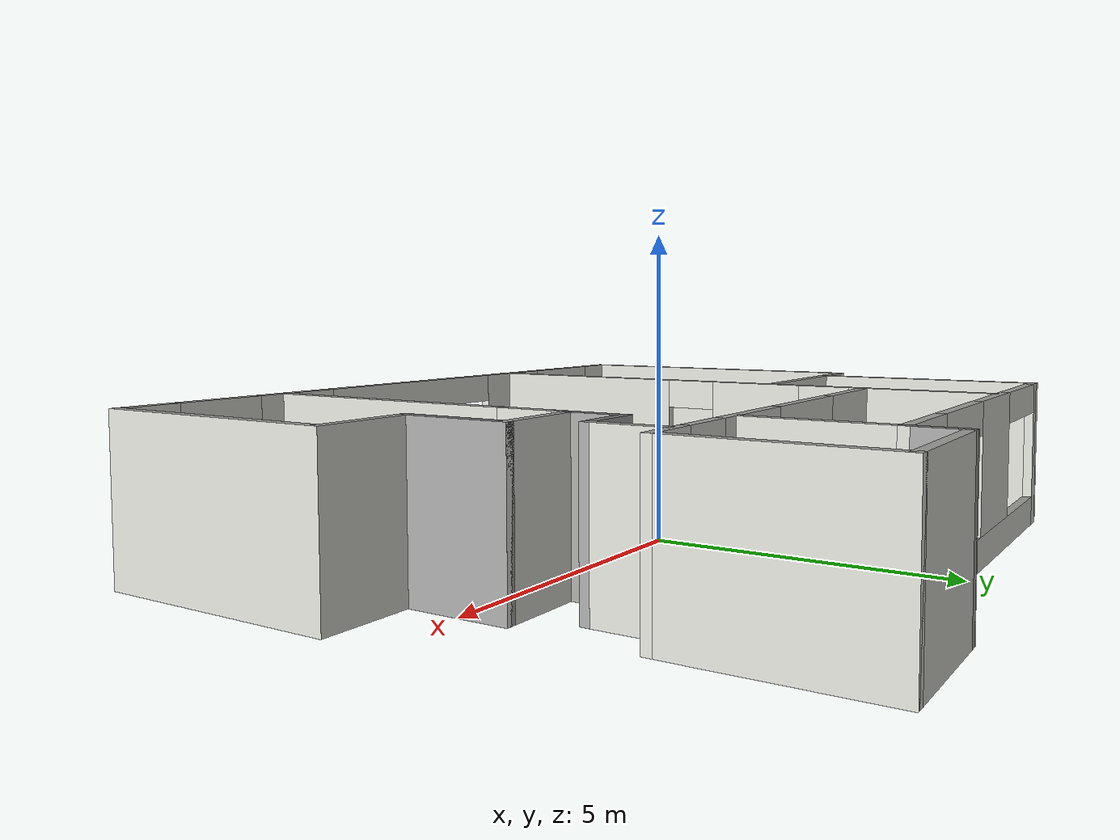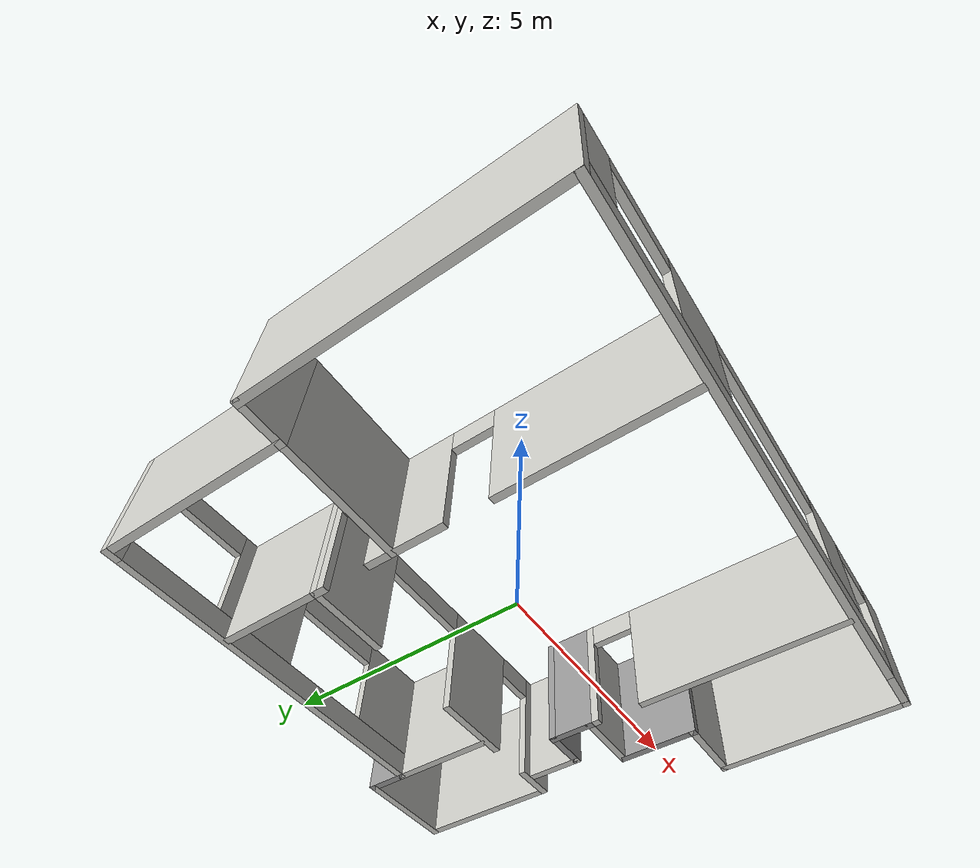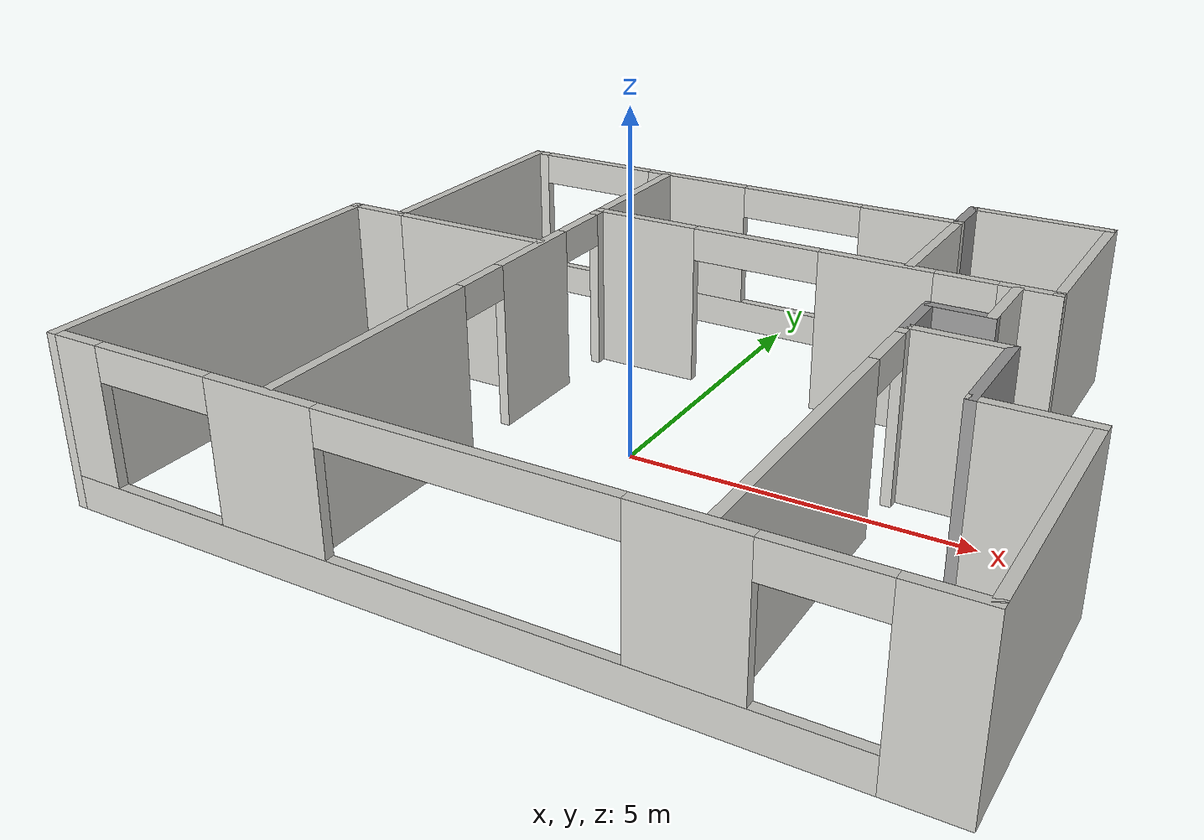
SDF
<?xml version='1.0'?>
<sdf version='1.7'>
  <model name='Myhouse'>
    <pose>0.421479 0.481294 0 0 -0 0</pose>
    <link name='Wall_0'>
      <pose>-1.32661 4.4683 0 0 -0 0</pose>
      <visual name='Wall_0_Visual_0'>
        <pose>-3.71536 0 1.25 0 -0 0</pose>
        <geometry>
          <box>
            <size>0.319288 0.15 2.5</size>
          </box>
        </geometry>
        <material>
          <script>
            <uri>file://media/materials/scripts/gazebo.material</uri>
            <name>Gazebo/CeilingTiled</name>
          </script>
          <ambient>1 1 1 1</ambient>
        </material>
        <meta>
          <layer>0</layer>
        </meta>
      </visual>
      <collision name='Wall_0_Collision_0'>
        <geometry>
          <box>
            <size>0.319288 0.15 2.5</size>
          </box>
        </geometry>
        <pose>-3.71536 0 1.25 0 -0 0</pose>
      </collision>
      <visual name='Wall_0_Visual_1'>
        <pose>0.159644 0 0.25 0 -0 0</pose>
        <geometry>
          <box>
            <size>7.43071 0.15 0.5</size>
          </box>
        </geometry>
        <material>
          <script>
            <uri>file://media/materials/scripts/gazebo.material</uri>
            <name>Gazebo/CeilingTiled</name>
          </script>
          <ambient>1 1 1 1</ambient>
        </material>
        <meta>
          <layer>0</layer>
        </meta>
      </visual>
      <collision name='Wall_0_Collision_1'>
        <geometry>
          <box>
            <size>7.43071 0.15 0.5</size>
          </box>
        </geometry>
        <pose>0.159644 0 0.25 0 -0 0</pose>
      </collision>
      <visual name='Wall_0_Visual_2'>
        <pose>-0.655441 0 1.5 0 -0 0</pose>
        <geometry>
          <box>
            <size>1.80054 0.15 2</size>
          </box>
        </geometry>
        <material>
          <script>
            <uri>file://media/materials/scripts/gazebo.material</uri>
            <name>Gazebo/CeilingTiled</name>
          </script>
          <ambient>1 1 1 1</ambient>
        </material>
        <meta>
          <layer>0</layer>
        </meta>
      </visual>
      <collision name='Wall_0_Collision_2'>
        <geometry>
          <box>
            <size>1.80054 0.15 2</size>
          </box>
        </geometry>
        <pose>-0.655441 0 1.5 0 -0 0</pose>
      </collision>
      <visual name='Wall_0_Visual_3'>
        <pose>3.05992 0 1.5 0 -0 0</pose>
        <geometry>
          <box>
            <size>1.63017 0.15 2</size>
          </box>
        </geometry>
        <material>
          <script>
            <uri>file://media/materials/scripts/gazebo.material</uri>
            <name>Gazebo/CeilingTiled</name>
          </script>
          <ambient>1 1 1 1</ambient>
        </material>
        <meta>
          <layer>0</layer>
        </meta>
      </visual>
      <collision name='Wall_0_Collision_3'>
        <geometry>
          <box>
            <size>1.63017 0.15 2</size>
          </box>
        </geometry>
        <pose>3.05992 0 1.5 0 -0 0</pose>
      </collision>
      <visual name='Wall_0_Visual_4'>
        <pose>-2.55571 0 2.25 0 -0 0</pose>
        <geometry>
          <box>
            <size>2 0.15 0.5</size>
          </box>
        </geometry>
        <material>
          <script>
            <uri>file://media/materials/scripts/gazebo.material</uri>
            <name>Gazebo/CeilingTiled</name>
          </script>
          <ambient>1 1 1 1</ambient>
        </material>
        <meta>
          <layer>0</layer>
        </meta>
      </visual>
      <collision name='Wall_0_Collision_4'>
        <geometry>
          <box>
            <size>2 0.15 0.5</size>
          </box>
        </geometry>
        <pose>-2.55571 0 2.25 0 -0 0</pose>
      </collision>
      <visual name='Wall_0_Visual_5'>
        <pose>1.24483 0 2.25 0 -0 0</pose>
        <geometry>
          <box>
            <size>2 0.15 0.5</size>
          </box>
        </geometry>
        <material>
          <script>
            <uri>file://media/materials/scripts/gazebo.material</uri>
            <name>Gazebo/CeilingTiled</name>
          </script>
          <ambient>1 1 1 1</ambient>
        </material>
        <meta>
          <layer>0</layer>
        </meta>
      </visual>
      <collision name='Wall_0_Collision_5'>
        <geometry>
          <box>
            <size>2 0.15 0.5</size>
          </box>
        </geometry>
        <pose>1.24483 0 2.25 0 -0 0</pose>
      </collision>
    </link>
    <link name='Wall_1'>
      <collision name='Wall_1_Collision'>
        <geometry>
          <box>
            <size>0.9 0.15 2.5</size>
          </box>
        </geometry>
        <pose>0 0 1.25 0 -0 0</pose>
      </collision>
      <visual name='Wall_1_Visual'>
        <pose>0 0 1.25 0 -0 0</pose>
        <geometry>
          <box>
            <size>0.9 0.15 2.5</size>
          </box>
        </geometry>
        <material>
          <script>
            <uri>file://media/materials/scripts/gazebo.material</uri>
            <name>Gazebo/Grey</name>
          </script>
          <ambient>1 1 1 1</ambient>
        </material>
        <meta>
          <layer>0</layer>
        </meta>
      </visual>
      <pose>2.47339 4.8433 0 0 -0 1.5708</pose>
    </link>
    <link name='Wall_10'>
      <pose>1.02339 2.2683 0 0 -0 3.14159</pose>
      <visual name='Wall_10_Visual_0'>
        <pose>-3.17845 0 1.25 0 -0 0</pose>
        <geometry>
          <box>
            <size>0.893093 0.15 2.5</size>
          </box>
        </geometry>
        <material>
          <script>
            <uri>file://media/materials/scripts/gazebo.material</uri>
            <name>Gazebo/CeilingTiled</name>
          </script>
          <ambient>1 1 1 1</ambient>
        </material>
        <meta>
          <layer>0</layer>
        </meta>
      </visual>
      <collision name='Wall_10_Collision_0'>
        <geometry>
          <box>
            <size>0.893093 0.15 2.5</size>
          </box>
        </geometry>
        <pose>-3.17845 0 1.25 0 -0 0</pose>
      </collision>
      <visual name='Wall_10_Visual_1'>
        <pose>-0.973862 0 1.25 0 -0 0</pose>
        <geometry>
          <box>
            <size>1.71609 0.15 2.5</size>
          </box>
        </geometry>
        <material>
          <script>
            <uri>file://media/materials/scripts/gazebo.material</uri>
            <name>Gazebo/CeilingTiled</name>
          </script>
          <ambient>1 1 1 1</ambient>
        </material>
        <meta>
          <layer>0</layer>
        </meta>
      </visual>
      <collision name='Wall_10_Collision_1'>
        <geometry>
          <box>
            <size>1.71609 0.15 2.5</size>
          </box>
        </geometry>
        <pose>-0.973862 0 1.25 0 -0 0</pose>
      </collision>
      <visual name='Wall_10_Visual_2'>
        <pose>2.75459 0 1.25 0 -0 0</pose>
        <geometry>
          <box>
            <size>1.74082 0.15 2.5</size>
          </box>
        </geometry>
        <material>
          <script>
            <uri>file://media/materials/scripts/gazebo.material</uri>
            <name>Gazebo/CeilingTiled</name>
          </script>
          <ambient>1 1 1 1</ambient>
        </material>
        <meta>
          <layer>0</layer>
        </meta>
      </visual>
      <collision name='Wall_10_Collision_2'>
        <geometry>
          <box>
            <size>1.74082 0.15 2.5</size>
          </box>
        </geometry>
        <pose>2.75459 0 1.25 0 -0 0</pose>
      </collision>
      <visual name='Wall_10_Visual_3'>
        <pose>-2.28191 0 2.25 0 -0 0</pose>
        <geometry>
          <box>
            <size>0.9 0.15 0.5</size>
          </box>
        </geometry>
        <material>
          <script>
            <uri>file://media/materials/scripts/gazebo.material</uri>
            <name>Gazebo/CeilingTiled</name>
          </script>
          <ambient>1 1 1 1</ambient>
        </material>
        <meta>
          <layer>0</layer>
        </meta>
      </visual>
      <collision name='Wall_10_Collision_3'>
        <geometry>
          <box>
            <size>0.9 0.15 0.5</size>
          </box>
        </geometry>
        <pose>-2.28191 0 2.25 0 -0 0</pose>
      </collision>
      <visual name='Wall_10_Visual_4'>
        <pose>0.884182 0 2.25 0 -0 0</pose>
        <geometry>
          <box>
            <size>2 0.15 0.5</size>
          </box>
        </geometry>
        <material>
          <script>
            <uri>file://media/materials/scripts/gazebo.material</uri>
            <name>Gazebo/CeilingTiled</name>
          </script>
          <ambient>1 1 1 1</ambient>
        </material>
        <meta>
          <layer>0</layer>
        </meta>
      </visual>
      <collision name='Wall_10_Collision_4'>
        <geometry>
          <box>
            <size>2 0.15 0.5</size>
          </box>
        </geometry>
        <pose>0.884182 0 2.25 0 -0 0</pose>
      </collision>
    </link>
    <link name='Wall_11'>
      <collision name='Wall_11_Collision'>
        <geometry>
          <box>
            <size>2.25 0.15 2.5</size>
          </box>
        </geometry>
        <pose>0 0 1.25 0 -0 0</pose>
      </collision>
      <visual name='Wall_11_Visual'>
        <pose>0 0 1.25 0 -0 0</pose>
        <geometry>
          <box>
            <size>2.25 0.15 2.5</size>
          </box>
        </geometry>
        <material>
          <script>
            <uri>file://media/materials/scripts/gazebo.material</uri>
            <name>Gazebo/CeilingTiled</name>
          </script>
          <ambient>1 1 1 1</ambient>
        </material>
        <meta>
          <layer>0</layer>
        </meta>
      </visual>
      <pose>-2.52661 3.3183 0 0 -0 1.5708</pose>
    </link>
    <link name='Wall_13'>
      <collision name='Wall_13_Collision'>
        <geometry>
          <box>
            <size>1.25 0.15 2.5</size>
          </box>
        </geometry>
        <pose>0 0 1.25 0 -0 0</pose>
      </collision>
      <visual name='Wall_13_Visual'>
        <pose>0 0 1.25 0 -0 0</pose>
        <geometry>
          <box>
            <size>1.25 0.15 2.5</size>
          </box>
        </geometry>
        <material>
          <script>
            <uri>file://media/materials/scripts/gazebo.material</uri>
            <name>Gazebo/CeilingTiled</name>
          </script>
          <ambient>1 1 1 1</ambient>
        </material>
        <meta>
          <layer>0</layer>
        </meta>
      </visual>
      <pose>4.02661 1.63186 0 0 -0 -1.5708</pose>
    </link>
    <link name='Wall_14'>
      <collision name='Wall_14_Collision'>
        <geometry>
          <box>
            <size>1 0.15 2.5</size>
          </box>
        </geometry>
        <pose>0 0 1.25 0 -0 0</pose>
      </collision>
      <visual name='Wall_14_Visual'>
        <pose>0 0 1.25 0 -0 0</pose>
        <geometry>
          <box>
            <size>1 0.15 2.5</size>
          </box>
        </geometry>
        <material>
          <script>
            <uri>file://media/materials/scripts/gazebo.material</uri>
            <name>Gazebo/Grey</name>
          </script>
          <ambient>1 1 1 1</ambient>
        </material>
        <meta>
          <layer>0</layer>
        </meta>
      </visual>
      <pose>3.60161 1.08186 0 0 -0 3.14159</pose>
    </link>
    <link name='Wall_15'>
      <collision name='Wall_15_Collision'>
        <geometry>
          <box>
            <size>1 0.15 2.5</size>
          </box>
        </geometry>
        <pose>0 0 1.25 0 -0 0</pose>
      </collision>
      <visual name='Wall_15_Visual'>
        <pose>0 0 1.25 0 -0 0</pose>
        <geometry>
          <box>
            <size>1 0.15 2.5</size>
          </box>
        </geometry>
        <material>
          <script>
            <uri>file://media/materials/scripts/gazebo.material</uri>
            <name>Gazebo/Grey</name>
          </script>
          <ambient>1 1 1 1</ambient>
        </material>
        <meta>
          <layer>0</layer>
        </meta>
      </visual>
      <pose>3.17661 0.656859 0 0 -0 -1.5708</pose>
    </link>
    <link name='Wall_16'>
      <collision name='Wall_16_Collision'>
        <geometry>
          <box>
            <size>1.5 0.15 2.5</size>
          </box>
        </geometry>
        <pose>0 0 1.25 0 -0 0</pose>
      </collision>
      <visual name='Wall_16_Visual'>
        <pose>0 0 1.25 0 -0 0</pose>
        <geometry>
          <box>
            <size>1.5 0.15 2.5</size>
          </box>
        </geometry>
        <material>
          <script>
            <uri>file://media/materials/scripts/gazebo.material</uri>
            <name>Gazebo/CeilingTiled</name>
          </script>
          <ambient>1 1 1 1</ambient>
        </material>
        <meta>
          <layer>0</layer>
        </meta>
      </visual>
      <pose>3.85161 0.231859 0 0 -0 0</pose>
    </link>
    <link name='Wall_19'>
      <collision name='Wall_19_Collision'>
        <geometry>
          <box>
            <size>1.75 0.15 2.5</size>
          </box>
        </geometry>
        <pose>0 0 1.25 0 -0 0</pose>
      </collision>
      <visual name='Wall_19_Visual'>
        <pose>0 0 1.25 0 -0 0</pose>
        <geometry>
          <box>
            <size>1.75 0.15 2.5</size>
          </box>
        </geometry>
        <material>
          <script>
            <uri>file://media/materials/scripts/gazebo.material</uri>
            <name>Gazebo/Grey</name>
          </script>
          <ambient>1 1 1 1</ambient>
        </material>
        <meta>
          <layer>0</layer>
        </meta>
      </visual>
      <pose>4.52661 -0.568141 0 0 -0 -1.5708</pose>
    </link>
    <link name='Wall_20'>
      <collision name='Wall_20_Collision'>
        <geometry>
          <box>
            <size>1.6 0.15 2.5</size>
          </box>
        </geometry>
        <pose>0 0 1.25 0 -0 0</pose>
      </collision>
      <visual name='Wall_20_Visual'>
        <pose>0 0 1.25 0 -0 0</pose>
        <geometry>
          <box>
            <size>1.6 0.15 2.5</size>
          </box>
        </geometry>
        <material>
          <script>
            <uri>file://media/materials/scripts/gazebo.material</uri>
            <name>Gazebo/CeilingTiled</name>
          </script>
          <ambient>1 1 1 1</ambient>
        </material>
        <meta>
          <layer>0</layer>
        </meta>
      </visual>
      <pose>5.25161 -1.36814 0 0 -0 0</pose>
    </link>
    <link name='Wall_22'>
      <collision name='Wall_22_Collision'>
        <geometry>
          <box>
            <size>4 0.15 2.5</size>
          </box>
        </geometry>
        <pose>0 0 1.25 0 -0 0</pose>
      </collision>
      <visual name='Wall_22_Visual'>
        <pose>0 0 1.25 0 -0 0</pose>
        <geometry>
          <box>
            <size>4 0.15 2.5</size>
          </box>
        </geometry>
        <material>
          <script>
            <uri>file://media/materials/scripts/gazebo.material</uri>
            <name>Gazebo/CeilingTiled</name>
          </script>
          <ambient>1 1 1 1</ambient>
        </material>
        <meta>
          <layer>0</layer>
        </meta>
      </visual>
      <pose>5.97657 -3.29322 0 0 -0 -1.57082</pose>
    </link>
    <link name='Wall_24'>
      <pose>2.1e-05 -5.21829 0 0 -0 3.14159</pose>
      <visual name='Wall_24_Visual_0'>
        <pose>-5.56066 0 1.25 0 -0 0</pose>
        <geometry>
          <box>
            <size>0.981677 0.15 2.5</size>
          </box>
        </geometry>
        <material>
          <script>
            <uri>file://media/materials/scripts/gazebo.material</uri>
            <name>Gazebo/CeilingTiled</name>
          </script>
          <ambient>1 1 1 1</ambient>
        </material>
        <meta>
          <layer>0</layer>
        </meta>
      </visual>
      <collision name='Wall_24_Collision_0'>
        <geometry>
          <box>
            <size>0.981677 0.15 2.5</size>
          </box>
        </geometry>
        <pose>-5.56066 0 1.25 0 -0 0</pose>
      </collision>
      <visual name='Wall_24_Visual_1'>
        <pose>0.490838 0 0.25 0 -0 0</pose>
        <geometry>
          <box>
            <size>11.1213 0.15 0.5</size>
          </box>
        </geometry>
        <material>
          <script>
            <uri>file://media/materials/scripts/gazebo.material</uri>
            <name>Gazebo/CeilingTiled</name>
          </script>
          <ambient>1 1 1 1</ambient>
        </material>
        <meta>
          <layer>0</layer>
        </meta>
      </visual>
      <collision name='Wall_24_Collision_1'>
        <geometry>
          <box>
            <size>11.1213 0.15 0.5</size>
          </box>
        </geometry>
        <pose>0.490838 0 0.25 0 -0 0</pose>
      </collision>
      <visual name='Wall_24_Visual_2'>
        <pose>-2.94837 0 1.5 0 -0 0</pose>
        <geometry>
          <box>
            <size>1.44291 0.15 2</size>
          </box>
        </geometry>
        <material>
          <script>
            <uri>file://media/materials/scripts/gazebo.material</uri>
            <name>Gazebo/CeilingTiled</name>
          </script>
          <ambient>1 1 1 1</ambient>
        </material>
        <meta>
          <layer>0</layer>
        </meta>
      </visual>
      <collision name='Wall_24_Collision_2'>
        <geometry>
          <box>
            <size>1.44291 0.15 2</size>
          </box>
        </geometry>
        <pose>-2.94837 0 1.5 0 -0 0</pose>
      </collision>
      <visual name='Wall_24_Visual_3'>
        <pose>2.58532 0 1.5 0 -0 0</pose>
        <geometry>
          <box>
            <size>1.62446 0.15 2</size>
          </box>
        </geometry>
        <material>
          <script>
            <uri>file://media/materials/scripts/gazebo.material</uri>
            <name>Gazebo/CeilingTiled</name>
          </script>
          <ambient>1 1 1 1</ambient>
        </material>
        <meta>
          <layer>0</layer>
        </meta>
      </visual>
      <collision name='Wall_24_Collision_3'>
        <geometry>
          <box>
            <size>1.62446 0.15 2</size>
          </box>
        </geometry>
        <pose>2.58532 0 1.5 0 -0 0</pose>
      </collision>
      <visual name='Wall_24_Visual_4'>
        <pose>5.62452 0 1.5 0 -0 0</pose>
        <geometry>
          <box>
            <size>0.853952 0.15 2</size>
          </box>
        </geometry>
        <material>
          <script>
            <uri>file://media/materials/scripts/gazebo.material</uri>
            <name>Gazebo/CeilingTiled</name>
          </script>
          <ambient>1 1 1 1</ambient>
        </material>
        <meta>
          <layer>0</layer>
        </meta>
      </visual>
      <collision name='Wall_24_Collision_4'>
        <geometry>
          <box>
            <size>0.853952 0.15 2</size>
          </box>
        </geometry>
        <pose>5.62452 0 1.5 0 -0 0</pose>
      </collision>
      <visual name='Wall_24_Visual_5'>
        <pose>4.29755 0 0.50025 0 -0 0</pose>
        <geometry>
          <box>
            <size>1.8 0.15 0.0005</size>
          </box>
        </geometry>
        <material>
          <script>
            <uri>file://media/materials/scripts/gazebo.material</uri>
            <name>Gazebo/CeilingTiled</name>
          </script>
          <ambient>1 1 1 1</ambient>
        </material>
        <meta>
          <layer>0</layer>
        </meta>
      </visual>
      <collision name='Wall_24_Collision_5'>
        <geometry>
          <box>
            <size>1.8 0.15 0.0005</size>
          </box>
        </geometry>
        <pose>4.29755 0 0.50025 0 -0 0</pose>
      </collision>
      <visual name='Wall_24_Visual_6'>
        <pose>-4.36982 0 2.25 0 -0 0</pose>
        <geometry>
          <box>
            <size>1.4 0.15 0.5</size>
          </box>
        </geometry>
        <material>
          <script>
            <uri>file://media/materials/scripts/gazebo.material</uri>
            <name>Gazebo/CeilingTiled</name>
          </script>
          <ambient>1 1 1 1</ambient>
        </material>
        <meta>
          <layer>0</layer>
        </meta>
      </visual>
      <collision name='Wall_24_Collision_6'>
        <geometry>
          <box>
            <size>1.4 0.15 0.5</size>
          </box>
        </geometry>
        <pose>-4.36982 0 2.25 0 -0 0</pose>
      </collision>
      <visual name='Wall_24_Visual_7'>
        <pose>-0.226915 0 2.25 0 -0 0</pose>
        <geometry>
          <box>
            <size>4 0.15 0.5</size>
          </box>
        </geometry>
        <material>
          <script>
            <uri>file://media/materials/scripts/gazebo.material</uri>
            <name>Gazebo/CeilingTiled</name>
          </script>
          <ambient>1 1 1 1</ambient>
        </material>
        <meta>
          <layer>0</layer>
        </meta>
      </visual>
      <collision name='Wall_24_Collision_7'>
        <geometry>
          <box>
            <size>4 0.15 0.5</size>
          </box>
        </geometry>
        <pose>-0.226915 0 2.25 0 -0 0</pose>
      </collision>
      <visual name='Wall_24_Visual_8'>
        <pose>4.29755 0 2.25025 0 -0 0</pose>
        <geometry>
          <box>
            <size>1.8 0.15 0.4995</size>
          </box>
        </geometry>
        <material>
          <script>
            <uri>file://media/materials/scripts/gazebo.material</uri>
            <name>Gazebo/CeilingTiled</name>
          </script>
          <ambient>1 1 1 1</ambient>
        </material>
        <meta>
          <layer>0</layer>
        </meta>
      </visual>
      <collision name='Wall_24_Collision_8'>
        <geometry>
          <box>
            <size>1.8 0.15 0.4995</size>
          </box>
        </geometry>
        <pose>4.29755 0 2.25025 0 -0 0</pose>
      </collision>
    </link>
    <link name='Wall_26'>
      <collision name='Wall_26_Collision'>
        <geometry>
          <box>
            <size>5.93659 0.15 2.5</size>
          </box>
        </geometry>
        <pose>0 0 1.25 0 -0 0</pose>
      </collision>
      <visual name='Wall_26_Visual'>
        <pose>0 0 1.25 0 -0 0</pose>
        <geometry>
          <box>
            <size>5.93659 0.15 2.5</size>
          </box>
        </geometry>
        <material>
          <script>
            <uri>file://media/materials/scripts/gazebo.material</uri>
            <name>Gazebo/CeilingTiled</name>
          </script>
          <ambient>1 1 1 1</ambient>
        </material>
        <meta>
          <layer>0</layer>
        </meta>
      </visual>
      <pose>-5.97655 -2.325 0 0 -0 1.57082</pose>
    </link>
    <link name='Wall_29'>
      <pose>-2.52661 -1.4067 0 0 -0 -1.5708</pose>
      <visual name='Wall_29_Visual_0'>
        <pose>-3.5933 0 1.25 0 -0 0</pose>
        <geometry>
          <box>
            <size>0.3134 0.15 2.5</size>
          </box>
        </geometry>
        <material>
          <script>
            <uri>file://media/materials/scripts/gazebo.material</uri>
            <name>Gazebo/CeilingTiled</name>
          </script>
          <ambient>1 1 1 1</ambient>
        </material>
        <meta>
          <layer>0</layer>
        </meta>
      </visual>
      <collision name='Wall_29_Collision_0'>
        <geometry>
          <box>
            <size>0.3134 0.15 2.5</size>
          </box>
        </geometry>
        <pose>-3.5933 0 1.25 0 -0 0</pose>
      </collision>
      <visual name='Wall_29_Visual_1'>
        <pose>-1.70626 0 1.25 0 -0 0</pose>
        <geometry>
          <box>
            <size>1.66067 0.15 2.5</size>
          </box>
        </geometry>
        <material>
          <script>
            <uri>file://media/materials/scripts/gazebo.material</uri>
            <name>Gazebo/CeilingTiled</name>
          </script>
          <ambient>1 1 1 1</ambient>
        </material>
        <meta>
          <layer>0</layer>
        </meta>
      </visual>
      <collision name='Wall_29_Collision_1'>
        <geometry>
          <box>
            <size>1.66067 0.15 2.5</size>
          </box>
        </geometry>
        <pose>-1.70626 0 1.25 0 -0 0</pose>
      </collision>
      <visual name='Wall_29_Visual_2'>
        <pose>1.88704 0 1.25 0 -0 0</pose>
        <geometry>
          <box>
            <size>3.72593 0.15 2.5</size>
          </box>
        </geometry>
        <material>
          <script>
            <uri>file://media/materials/scripts/gazebo.material</uri>
            <name>Gazebo/CeilingTiled</name>
          </script>
          <ambient>1 1 1 1</ambient>
        </material>
        <meta>
          <layer>0</layer>
        </meta>
      </visual>
      <collision name='Wall_29_Collision_2'>
        <geometry>
          <box>
            <size>3.72593 0.15 2.5</size>
          </box>
        </geometry>
        <pose>1.88704 0 1.25 0 -0 0</pose>
      </collision>
      <visual name='Wall_29_Visual_3'>
        <pose>-2.9866 0 2.25 0 -0 0</pose>
        <geometry>
          <box>
            <size>0.9 0.15 0.5</size>
          </box>
        </geometry>
        <material>
          <script>
            <uri>file://media/materials/scripts/gazebo.material</uri>
            <name>Gazebo/CeilingTiled</name>
          </script>
          <ambient>1 1 1 1</ambient>
        </material>
        <meta>
          <layer>0</layer>
        </meta>
      </visual>
      <collision name='Wall_29_Collision_3'>
        <geometry>
          <box>
            <size>0.9 0.15 0.5</size>
          </box>
        </geometry>
        <pose>-2.9866 0 2.25 0 -0 0</pose>
      </collision>
      <visual name='Wall_29_Visual_4'>
        <pose>-0.425927 0 2.25 0 -0 0</pose>
        <geometry>
          <box>
            <size>0.9 0.15 0.5</size>
          </box>
        </geometry>
        <material>
          <script>
            <uri>file://media/materials/scripts/gazebo.material</uri>
            <name>Gazebo/CeilingTiled</name>
          </script>
          <ambient>1 1 1 1</ambient>
        </material>
        <meta>
          <layer>0</layer>
        </meta>
      </visual>
      <collision name='Wall_29_Collision_4'>
        <geometry>
          <box>
            <size>0.9 0.15 0.5</size>
          </box>
        </geometry>
        <pose>-0.425927 0 2.25 0 -0 0</pose>
      </collision>
    </link>
    <link name='Wall_3'>
      <collision name='Wall_3_Collision'>
        <geometry>
          <box>
            <size>2.25 0.15 2.5</size>
          </box>
        </geometry>
        <pose>0 0 1.25 0 -0 0</pose>
      </collision>
      <visual name='Wall_3_Visual'>
        <pose>0 0 1.25 0 -0 0</pose>
        <geometry>
          <box>
            <size>2.25 0.15 2.5</size>
          </box>
        </geometry>
        <material>
          <script>
            <uri>file://media/materials/scripts/gazebo.material</uri>
            <name>Gazebo/CeilingTiled</name>
          </script>
          <ambient>1 1 1 1</ambient>
        </material>
        <meta>
          <layer>0</layer>
        </meta>
      </visual>
      <pose>3.52339 5.2183 0 0 -0 0</pose>
    </link>
    <link name='Wall_31'>
      <pose>3.17661 -2.44314 0 0 -0 -1.5708</pose>
      <visual name='Wall_31_Visual_0'>
        <pose>-2.59448 0 1.25 0 -0 0</pose>
        <geometry>
          <box>
            <size>0.311042 0.15 2.5</size>
          </box>
        </geometry>
        <material>
          <script>
            <uri>file://media/materials/scripts/gazebo.material</uri>
            <name>Gazebo/CeilingTiled</name>
          </script>
          <ambient>1 1 1 1</ambient>
        </material>
        <meta>
          <layer>0</layer>
        </meta>
      </visual>
      <collision name='Wall_31_Collision_0'>
        <geometry>
          <box>
            <size>0.311042 0.15 2.5</size>
          </box>
        </geometry>
        <pose>-2.59448 0 1.25 0 -0 0</pose>
      </collision>
      <visual name='Wall_31_Visual_1'>
        <pose>0.605521 0 1.25 0 -0 0</pose>
        <geometry>
          <box>
            <size>4.28896 0.15 2.5</size>
          </box>
        </geometry>
        <material>
          <script>
            <uri>file://media/materials/scripts/gazebo.material</uri>
            <name>Gazebo/CeilingTiled</name>
          </script>
          <ambient>1 1 1 1</ambient>
        </material>
        <meta>
          <layer>0</layer>
        </meta>
      </visual>
      <collision name='Wall_31_Collision_1'>
        <geometry>
          <box>
            <size>4.28896 0.15 2.5</size>
          </box>
        </geometry>
        <pose>0.605521 0 1.25 0 -0 0</pose>
      </collision>
      <visual name='Wall_31_Visual_2'>
        <pose>-1.98896 0 2.25 0 -0 0</pose>
        <geometry>
          <box>
            <size>0.9 0.15 0.5</size>
          </box>
        </geometry>
        <material>
          <script>
            <uri>file://media/materials/scripts/gazebo.material</uri>
            <name>Gazebo/CeilingTiled</name>
          </script>
          <ambient>1 1 1 1</ambient>
        </material>
        <meta>
          <layer>0</layer>
        </meta>
      </visual>
      <collision name='Wall_31_Collision_2'>
        <geometry>
          <box>
            <size>0.9 0.15 0.5</size>
          </box>
        </geometry>
        <pose>-1.98896 0 2.25 0 -0 0</pose>
      </collision>
    </link>
    <link name='Wall_33'>
      <collision name='Wall_33_Collision'>
        <geometry>
          <box>
            <size>2.75 0.15 2.5</size>
          </box>
        </geometry>
        <pose>0 0 1.25 0 -0 0</pose>
      </collision>
      <visual name='Wall_33_Visual'>
        <pose>0 0 1.25 0 -0 0</pose>
        <geometry>
          <box>
            <size>2.75 0.15 2.5</size>
          </box>
        </geometry>
        <material>
          <script>
            <uri>file://media/materials/scripts/gazebo.material</uri>
            <name>Gazebo/CeilingTiled</name>
          </script>
          <ambient>1 1 1 1</ambient>
        </material>
        <meta>
          <layer>0</layer>
        </meta>
      </visual>
      <pose>-3.82661 0.568296 0 0 -0 0</pose>
    </link>
    <link name='Wall_35'>
      <collision name='Wall_35_Collision'>
        <geometry>
          <box>
            <size>2.25 0.15 2.5</size>
          </box>
        </geometry>
        <pose>0 0 1.25 0 -0 0</pose>
      </collision>
      <visual name='Wall_35_Visual'>
        <pose>0 0 1.25 0 -0 0</pose>
        <geometry>
          <box>
            <size>2.25 0.15 2.5</size>
          </box>
        </geometry>
        <material>
          <script>
            <uri>file://media/materials/scripts/gazebo.material</uri>
            <name>Gazebo/CeilingTiled</name>
          </script>
          <ambient>1 1 1 1</ambient>
        </material>
        <meta>
          <layer>0</layer>
        </meta>
      </visual>
      <pose>2.47339 3.4183 0 0 -0 -1.5708</pose>
    </link>
    <link name='Wall_4'>
      <collision name='Wall_4_Collision'>
        <geometry>
          <box>
            <size>3.1 0.15 2.5</size>
          </box>
        </geometry>
        <pose>0 0 1.25 0 -0 0</pose>
      </collision>
      <visual name='Wall_4_Visual'>
        <pose>0 0 1.25 0 -0 0</pose>
        <geometry>
          <box>
            <size>3.1 0.15 2.5</size>
          </box>
        </geometry>
        <material>
          <script>
            <uri>file://media/materials/scripts/gazebo.material</uri>
            <name>Gazebo/CeilingTiled</name>
          </script>
          <ambient>1 1 1 1</ambient>
        </material>
        <meta>
          <layer>0</layer>
        </meta>
      </visual>
      <pose>4.57339 3.7433 0 0 -0 -1.5708</pose>
    </link>
    <link name='Wall_6'>
      <collision name='Wall_6_Collision'>
        <geometry>
          <box>
            <size>4.05 0.15 2.5</size>
          </box>
        </geometry>
        <pose>0 0 1.25 0 -0 0</pose>
      </collision>
      <visual name='Wall_6_Visual'>
        <pose>0 0 1.25 0 -0 0</pose>
        <geometry>
          <box>
            <size>4.05 0.15 2.5</size>
          </box>
        </geometry>
        <material>
          <script>
            <uri>file://media/materials/scripts/gazebo.material</uri>
            <name>Gazebo/CeilingTiled</name>
          </script>
          <ambient>1 1 1 1</ambient>
        </material>
        <meta>
          <layer>0</layer>
        </meta>
      </visual>
      <pose>-5.12661 2.5183 0 0 -0 -1.5708</pose>
    </link>
    <link name='Wall_8'>
      <collision name='Wall_8_Collision'>
        <geometry>
          <box>
            <size>1 0.15 2.5</size>
          </box>
        </geometry>
        <pose>0 0 1.25 0 -0 0</pose>
      </collision>
      <visual name='Wall_8_Visual'>
        <pose>0 0 1.25 0 -0 0</pose>
        <geometry>
          <box>
            <size>1 0.15 2.5</size>
          </box>
        </geometry>
        <material>
          <script>
            <uri>file://media/materials/scripts/gazebo.material</uri>
            <name>Gazebo/CeilingTiled</name>
          </script>
          <ambient>1 1 1 1</ambient>
        </material>
        <meta>
          <layer>0</layer>
        </meta>
      </visual>
      <pose>-5.55161 0.568296 0 0 -0 3.14159</pose>
    </link>
    <static>1</static>
  </model>
</sdf>
